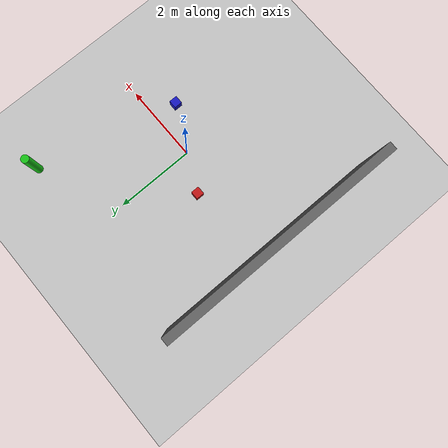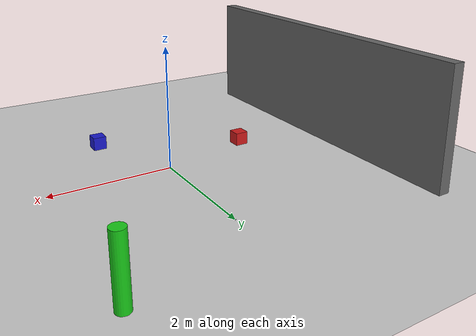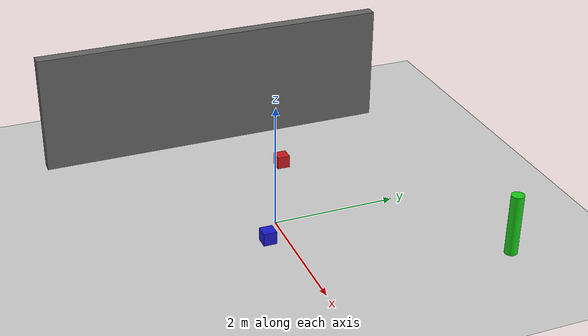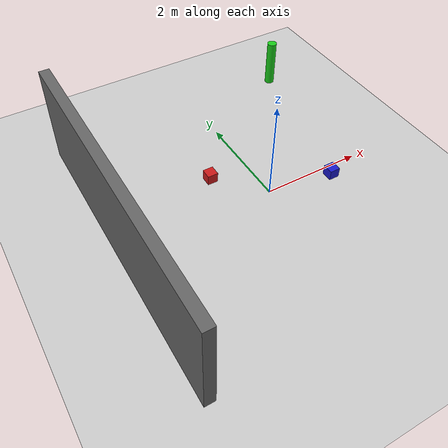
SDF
<?xml version="1.0" ?>
<sdf version="1.7">
  <world name="simple_humanoid">
    <!-- Include a ground plane -->
    <include>
      <uri>model://ground_plane</uri>
    </include>

    <!-- Include a sun for lighting -->
    <include>
      <uri>model://sun</uri>
    </include>

    <!-- Physics configuration -->
    <physics name="ode" type="ode">
      <max_step_size>0.001</max_step_size>
      <real_time_factor>1.0</real_time_factor>
      <real_time_update_rate>1000</real_time_update_rate>
      <gravity>0 0 -9.8</gravity>
    </physics>

    <!-- Scene lighting -->
    <scene>
      <ambient>0.3 0.3 0.3 1</ambient>
      <background>0.6 0.7 0.8 1</background>
      <shadows>true</shadows>
    </scene>

    <!-- Add some simple objects for the humanoid to interact with -->
    <model name="red_box">
      <pose>-1 0.5 0.5 0 0 0</pose>
      <static>false</static>
      <link name="link">
        <inertial>
          <mass>1.0</mass>
          <inertia>
            <ixx>0.083</ixx>
            <iyy>0.083</iyy>
            <izz>0.083</izz>
          </inertia>
        </inertial>
        <collision name="collision">
          <geometry>
            <box>
              <size>0.2 0.2 0.2</size>
            </box>
          </geometry>
        </collision>
        <visual name="visual">
          <geometry>
            <box>
              <size>0.2 0.2 0.2</size>
            </box>
          </geometry>
          <material>
            <ambient>0.8 0.1 0.1 1</ambient>
            <diffuse>0.8 0.1 0.1 1</diffuse>
          </material>
        </visual>
      </link>
    </model>

    <model name="blue_box">
      <pose>1 -0.5 0.5 0 0 0</pose>
      <static>false</static>
      <link name="link">
        <inertial>
          <mass>1.0</mass>
          <inertia>
            <ixx>0.083</ixx>
            <iyy>0.083</iyy>
            <izz>0.083</izz>
          </inertia>
        </inertial>
        <collision name="collision">
          <geometry>
            <box>
              <size>0.2 0.2 0.2</size>
            </box>
          </geometry>
        </collision>
        <visual name="visual">
          <geometry>
            <box>
              <size>0.2 0.2 0.2</size>
            </box>
          </geometry>
          <material>
            <ambient>0.1 0.1 0.8 1</ambient>
            <diffuse>0.1 0.1 0.8 1</diffuse>
          </material>
        </visual>
      </link>
    </model>

    <!-- A simple ramp for the humanoid to navigate -->
    <model name="ramp">
      <pose>0 2 0 0 0 0.785</pose>  <!-- 45 degree angle -->
      <static>true</static>
      <link name="link">
        <collision name="collision">
          <geometry>
            <mesh>
              <scale>1 1 1</scale>
              <uri>file://meshes/ramp.dae</uri>
            </mesh>
          </geometry>
        </collision>
        <visual name="visual">
          <geometry>
            <mesh>
              <scale>1 1 1</scale>
              <uri>file://meshes/ramp.dae</uri>
            </mesh>
          </geometry>
          <material>
            <ambient>0.5 0.5 0.5 1</ambient>
            <diffuse>0.5 0.5 0.5 1</diffuse>
          </material>
        </visual>
      </link>
    </model>

    <!-- A simple wall -->
    <model name="wall">
      <pose>-3 0 1 0 0 0</pose>
      <static>true</static>
      <link name="link">
        <collision name="collision">
          <geometry>
            <box>
              <size>0.2 6.0 2.0</size>
            </box>
          </geometry>
        </collision>
        <visual name="visual">
          <geometry>
            <box>
              <size>0.2 6.0 2.0</size>
            </box>
          </geometry>
          <material>
            <ambient>0.4 0.4 0.4 1</ambient>
            <diffuse>0.4 0.4 0.4 1</diffuse>
          </material>
        </visual>
      </link>
    </model>

    <!-- A simple goal marker -->
    <model name="goal_marker">
      <pose>2 3 0.5 0 0 0</pose>
      <static>true</static>
      <link name="link">
        <collision name="collision">
          <geometry>
            <cylinder>
              <radius>0.1</radius>
              <length>1.0</length>
            </cylinder>
          </geometry>
        </collision>
        <visual name="visual">
          <geometry>
            <cylinder>
              <radius>0.1</radius>
              <length>1.0</length>
            </cylinder>
          </geometry>
          <material>
            <ambient>0.1 0.8 0.1 1</ambient>
            <diffuse>0.1 0.8 0.1 1</diffuse>
          </material>
        </visual>
      </link>
    </model>

    <!-- Humanoid robot will be spawned separately -->
  </world>
</sdf>
